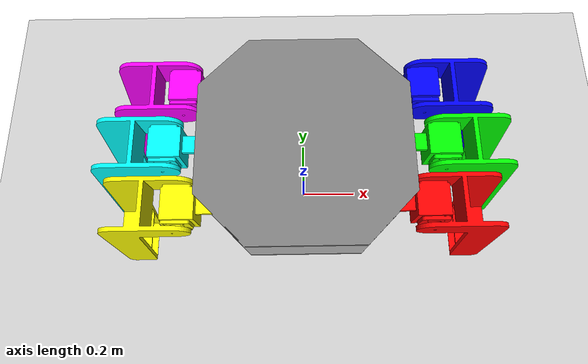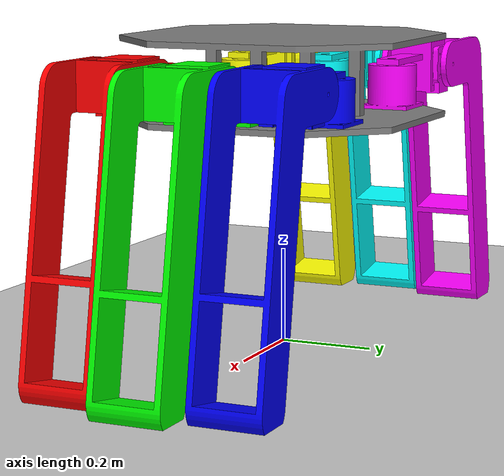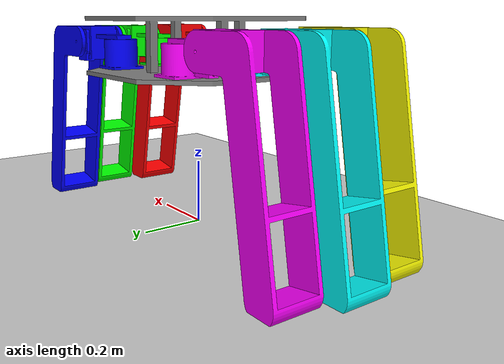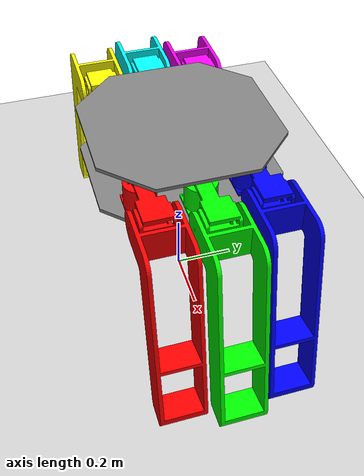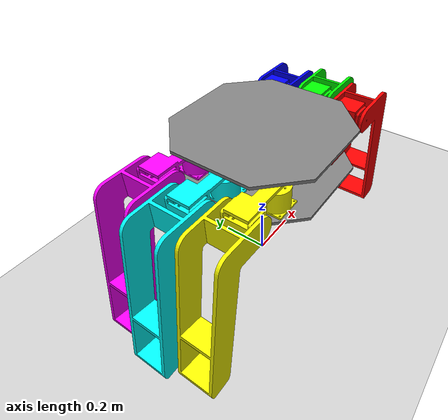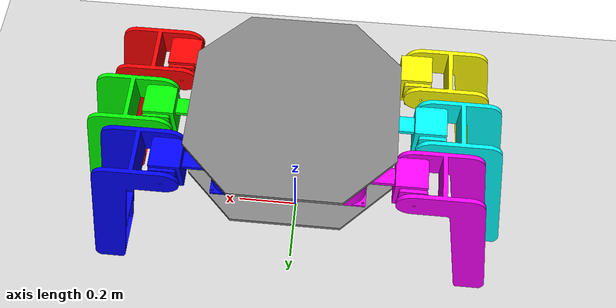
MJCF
<!-- Custom instatiation of hexapod - pawojcik -->
<!-- Used Blender to organize the components into the hexapod shape, referred to the Blender coordinates for individual component positioning -->
<!-- Key changes - no actuation limits, but instead joint limits, added damping on the joints to prevent ambient hip movement -->

<mujoco model="hexapod">
    <option timestep="0.002" gravity="0 0 -9.81"/>
    <compiler inertiafromgeom="true" angle="degree" autolimits="true"/>

    <!-- for fun -->
    <asset>
        <texture name="grid" type="2d" builtin="checker" rgb1=".1 .2 .3"
                 rgb2=".2 .3 .4" width="300" height="300" mark="edge"
                 markrgb="0.8 0.8 0.8"/>

        <material name="grid" texture="grid" texrepeat="5 5"
                  texuniform="true"/>

        <!-- OBJ components -->
        <mesh name="hexapod_body" file="blender_obj/hexapod_wc.obj" scale="1 1 1"/>
        <mesh name="hip1" file="blender_obj/hip1_wc.obj" scale="1 1 1"/>
        <mesh name="knee1" file="blender_obj/knee1_wc.obj" scale="1 1 1"/>
        <mesh name="leg1" file="blender_obj/leg1_wc.obj" scale="1 1 1"/>

        <mesh name="hip2" file="blender_obj/hip2_wc.obj" scale="1 1 1"/>
        <mesh name="knee2" file="blender_obj/knee2_wc.obj" scale="1 1 1"/>
        <mesh name="leg2" file="blender_obj/leg2_wc.obj" scale="1 1 1"/>

        <mesh name="hip3" file="blender_obj/hip3_wc.obj" scale="1 1 1"/>
        <mesh name="knee3" file="blender_obj/knee3_wc.obj" scale="1 1 1"/>
        <mesh name="leg3" file="blender_obj/leg3_wc.obj" scale="1 1 1"/>

        <mesh name="hip4" file="blender_obj/hip4_wc.obj" scale="1 1 1"/>
        <mesh name="knee4" file="blender_obj/knee4_wc.obj" scale="1 1 1"/>
        <mesh name="leg4" file="blender_obj/leg4_wc.obj" scale="1 1 1"/>

        <mesh name="hip5" file="blender_obj/hip5_wc.obj" scale="1 1 1"/>
        <mesh name="knee5" file="blender_obj/knee5_wc.obj" scale="1 1 1"/>
        <mesh name="leg5" file="blender_obj/leg5_wc.obj" scale="1 1 1"/>

        <mesh name="hip6" file="blender_obj/hip6_wc.obj" scale="1 1 1"/>
        <mesh name="knee6" file="blender_obj/knee6_wc.obj" scale="1 1 1"/>
        <mesh name="leg6" file="blender_obj/leg6_wc.obj" scale="1 1 1"/>
    </asset>

    <worldbody>
        <light pos="0 0 2" dir="0 0 -1"/>
        <geom name="floor" type="plane" size="5 5 0.1" material="grid" rgba="0.8 0.8 0.8 1"/>

        <body name="torso" pos="0 0 0">
            <geom type="mesh" mesh="hexapod_body"/>

            <!-- TRY THIS - body is supported by a central beam, control its movement as such -->
            <joint name="torso_x" type="slide" axis="1 0 0"/>
            <joint name="torso_y" type="slide" axis="0 1 0"/>
            <joint name="torso_yaw" type="hinge" axis="0 0 1"/>

            <!-- RIGHT SIDE -->

            <body name="leg1">
                <body name="hip1">
                    <joint name="hip1_joint" pos="0.18 -0.18 0.6" axis="0 0 1" type="hinge" range="-60 60" ref="45" damping="50"/>
                    <geom type="mesh" mesh="hip1" rgba="1 0 0 1"/>

                    <body name="knee1">
                        <geom type="mesh" mesh="knee1" rgba="1 0 0 1"/>

                        <body name="legpart1" pos="0 0 0">
                            <joint name="knee1_joint"
                                type="hinge"
                                axis="0 -1 0"
                                range="90 120"
                                ref="120" pos="0.32 -0.18 0.6" />
                            <geom type="mesh" mesh="leg1" rgba="1 0 0 1"/>
                        </body>
                    </body>
                </body>
            </body>

            <!-- Green leg 2 -->
            <body name="leg2">
                <body name="hip2">
                    <joint name="hip2_joint" pos="0.22 0 0.6" axis="0 0 1" type="hinge" range="-60 60" ref="0" damping="50"/>
                    <geom type="mesh" mesh="hip2" rgba="0 1 0 1"/>

                    <body name="knee2">

                        <geom type="mesh" mesh="knee2" rgba="0 1 0 1"/>
                        <body name="legpart2">
                            <joint name="knee2_joint" pos="0.37 0 0.6" axis="0 -1 0" type="hinge" range="90 120" ref="120"/>
                            <geom type="mesh" mesh="leg2" rgba="0 1 0 1"/>
                        </body>
                    </body>
                </body>
            </body>

            <!-- Blue leg 3 -->
            <body name="leg3">
                <body name="hip3">
                    <joint name="hip3_joint" pos="0.18 0.18 0.6" axis="0 0 1" type="hinge" range="-60 60" ref="-45" damping="50"/>
                    <geom type="mesh" mesh="hip3" rgba="0 0 1 1"/>

                    <body name="knee3">

                        <geom type="mesh" mesh="knee3" rgba="0 0 1 1"/>

                        <body name="legpart3">
                            <joint name="knee3_joint" pos="0.32 0.18 0.6" axis="0 -1 0" type="hinge" range="90 120" ref="120"/>
                            <geom type="mesh" mesh="leg3" rgba="0 0 1 1"/>
                        </body>
                    </body>
                </body>
            </body>

            <!-- LEFT SIDE -->

            <!-- Yellow leg 4 -->
            <body name="leg4">
                <body name="hip4">
                    <joint name="hip4_joint" pos="-0.18 -0.18 0.6" axis="0 0 1" type="hinge" range="-60 60" ref="-45" damping="50"/>
                    <geom type="mesh" mesh="hip4" rgba="1 1 0 1"/>

                    <body name="knee4">

                        <geom type="mesh" mesh="knee4" rgba="1 1 0 1"/>

                        <body name="legpart4">
                            <joint name="knee4_joint" pos="-0.32 -0.18 0.6" axis="0 -1 0" type="hinge" range="90 120" ref="90"/>
                            <geom type="mesh" mesh="leg4" rgba="1 1 0 1"/>
                        </body>
                    </body>
                </body>

            </body>

            <!-- Cyan leg 5 -->
            <body name="leg5">
                <body name="hip5">
                    <joint name="hip5_joint" pos="-0.2 0 0.6" axis="0 0 1" type="hinge" range="-60 60" damping="50"/>
                    <geom type="mesh" mesh="hip5" rgba="0 1 1 1"/>

                    <body name="knee5">

                        <geom type="mesh" mesh="knee5" rgba="0 1 1 1"/>

                        <body name="legpart5">
                            <joint name="knee5_joint" pos="-0.36 0 0.6" axis="0 -1 0" type="hinge" range="90 120" ref="90"/>
                            <geom type="mesh" mesh="leg5" rgba="0 1 1 1"/>
                        </body>
                    </body>
                </body>

            </body>

            <!-- Magenta leg 6 -->
            <body name="leg6">
                <body name="hip6">
                    <joint name="hip6_joint" pos="-0.18 0.18 0.6" axis="0 0 1" type="hinge" range="-60 60" ref="45" damping="50"/>
                    <geom type="mesh" mesh="hip6" rgba="1 0 1 1"/>

                    <body name="knee6">

                        <geom type="mesh" mesh="knee6" rgba="1 0 1 1"/>

                        <body name="legpart6">
                            <joint name="knee6_joint" pos="-0.32 0.18 0.6" axis="0 -1 0" type="hinge" range="90 120" ref="90"/>
                            <geom type="mesh" mesh="leg6" rgba="1 0 1 1"/>
                        </body>
                    </body>
                </body>
            </body>
        </body>
    </worldbody>

    <actuator>
        <!-- HIP MOVEMENT ACTUATION -->
        <position name="hip1_act" joint="hip1_joint" kp="4000" kv="60"/>
        <position name="hip2_act" joint="hip2_joint" kp="4000" kv="60"/>
        <position name="hip3_act" joint="hip3_joint" kp="4000" kv="60"/>
        <position name="hip4_act" joint="hip4_joint" kp="4000" kv="60"/>
        <position name="hip5_act" joint="hip5_joint" kp="4000" kv="60"/>
        <position name="hip6_act" joint="hip6_joint" kp="4000" kv="60"/>

        <!-- KNEE MOVEMENT ACTUATION -->
        <!-- kp and kv control how "powerful" the actuator is -->
        <position name="knee1_act" joint="knee1_joint" kp="400" kv="60"/>
        <position name="knee2_act" joint="knee2_joint" kp="400" kv="60"/>
        <position name="knee3_act" joint="knee3_joint" kp="400" kv="60"/>
        <position name="knee4_act" joint="knee4_joint" kp="400" kv="60"/>
        <position name="knee5_act" joint="knee5_joint" kp="400" kv="60"/>
        <position name="knee6_act" joint="knee6_joint" kp="400" kv="60"/>

    </actuator>

    <contact>
        <exclude body1="torso" body2="leg1"/>
        <exclude body1="torso" body2="leg2"/>
        <exclude body1="torso" body2="leg3"/>
        <exclude body1="torso" body2="leg4"/>
        <exclude body1="torso" body2="leg5"/>
        <exclude body1="torso" body2="leg6"/>

        <exclude body1="leg1" body2="leg2"/>
        <exclude body1="leg2" body2="leg3"/>
        <exclude body1="leg2" body2="leg3"/>
        <exclude body1="leg4" body2="leg5"/>
        <exclude body1="leg5" body2="leg6"/>
    </contact>
</mujoco>
